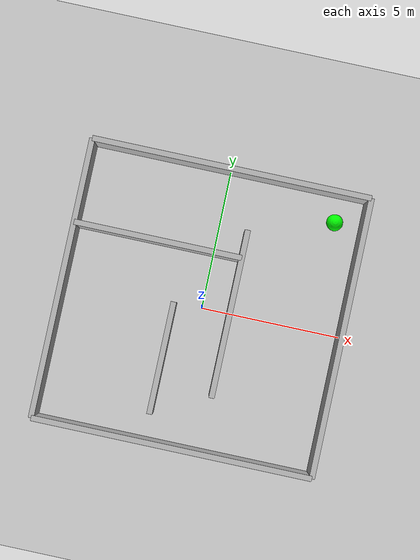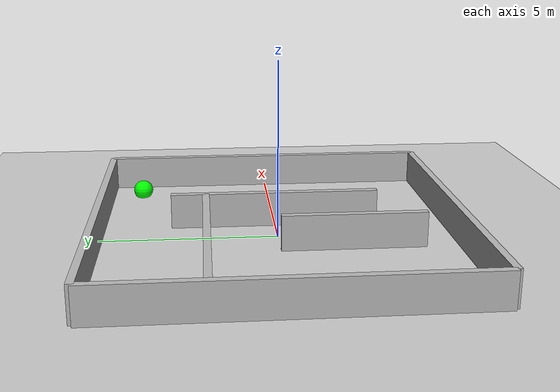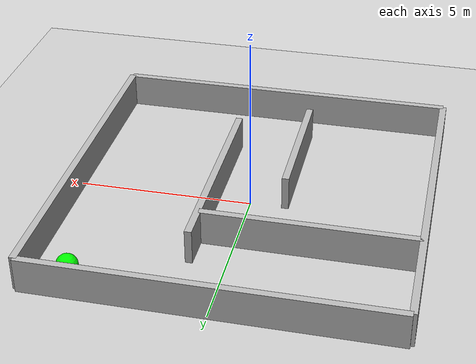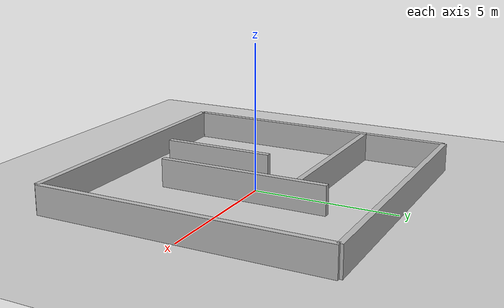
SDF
<?xml version="1.0" ?>
<sdf version="1.6">

<world name="maze_world">

  <!-- PHYSICS              -->
  <physics type="ode">
    <real_time_update_rate>1000</real_time_update_rate>
    <max_step_size>0.001</max_step_size>
  </physics>

  <!-- GAZEBO ROS PLUGINS   -->

  <!-- 🔥 state publisher (не обязательно, но полезно) -->
  <plugin name="gazebo_ros_state" filename="libgazebo_ros_state.so"/>

  <!-- LIGHT + GROUND       -->
  <include>
    <uri>model://sun</uri>
  </include>

  <include>
    <uri>model://ground_plane</uri>
  </include>

  <!-- OUTER WALLS          -->

  <model name="north_wall">
    <static>true</static>
    <pose>0 5 0.5 0 0 0</pose>
    <link name="link">
      <collision name="collision">
        <geometry><box><size>10 0.2 1</size></box></geometry>
      </collision>
      <visual name="visual">
        <geometry><box><size>10 0.2 1</size></box></geometry>
      </visual>
    </link>
  </model>

  <model name="south_wall">
    <static>true</static>
    <pose>0 -5 0.5 0 0 0</pose>
    <link name="link">
      <collision name="collision">
        <geometry><box><size>10 0.2 1</size></box></geometry>
      </collision>
      <visual name="visual">
        <geometry><box><size>10 0.2 1</size></box></geometry>
      </visual>
    </link>
  </model>

  <model name="east_wall">
    <static>true</static>
    <pose>5 0 0.5 0 0 0</pose>
    <link name="link">
      <collision name="collision">
        <geometry><box><size>0.2 10 1</size></box></geometry>
      </collision>
      <visual name="visual">
        <geometry><box><size>0.2 10 1</size></box></geometry>
      </visual>
    </link>
  </model>

  <model name="west_wall">
    <static>true</static>
    <pose>-5 0 0.5 0 0 0</pose>
    <link name="link">
      <collision name="collision">
        <geometry><box><size>0.2 10 1</size></box></geometry>
      </collision>
      <visual name="visual">
        <geometry><box><size>0.2 10 1</size></box></geometry>
      </visual>
    </link>
  </model>

  <!-- MAZE STRUCTURE       -->

  <model name="wall_1">
    <static>true</static>
    <pose>-2 2 0.5 0 0 0</pose>
    <link name="link">
      <collision name="collision">
        <geometry><box><size>6 0.2 1</size></box></geometry>
      </collision>
      <visual name="visual">
        <geometry><box><size>6 0.2 1</size></box></geometry>
      </visual>
    </link>
  </model>

  <model name="wall_2">
    <static>true</static>
    <pose>1 0 0.5 0 0 1.57</pose>
    <link name="link">
      <collision name="collision">
        <geometry><box><size>6 0.2 1</size></box></geometry>
      </collision>
      <visual name="visual">
        <geometry><box><size>6 0.2 1</size></box></geometry>
      </visual>
    </link>
  </model>

  <model name="wall_3">
    <static>true</static>
    <pose>-1 -2 0.5 0 0 1.57</pose>
    <link name="link">
      <collision name="collision">
        <geometry><box><size>4 0.2 1</size></box></geometry>
      </collision>
      <visual name="visual">
        <geometry><box><size>4 0.2 1</size></box></geometry>
      </visual>
    </link>
  </model>

  <!-- GOAL                 -->

  <model name="goal">
    <static>true</static>
    <pose>4 4 0.2 0 0 0</pose>

    <link name="link">
      <collision name="collision">
        <geometry>
          <sphere><radius>0.3</radius></sphere>
        </geometry>
      </collision>

      <visual name="visual">
        <geometry>
          <sphere><radius>0.3</radius></sphere>
        </geometry>

        <material>
          <ambient>0 1 0 1</ambient>
          <diffuse>0 1 0 1</diffuse>
        </material>
      </visual>
    </link>
  </model>

</world>
</sdf>
